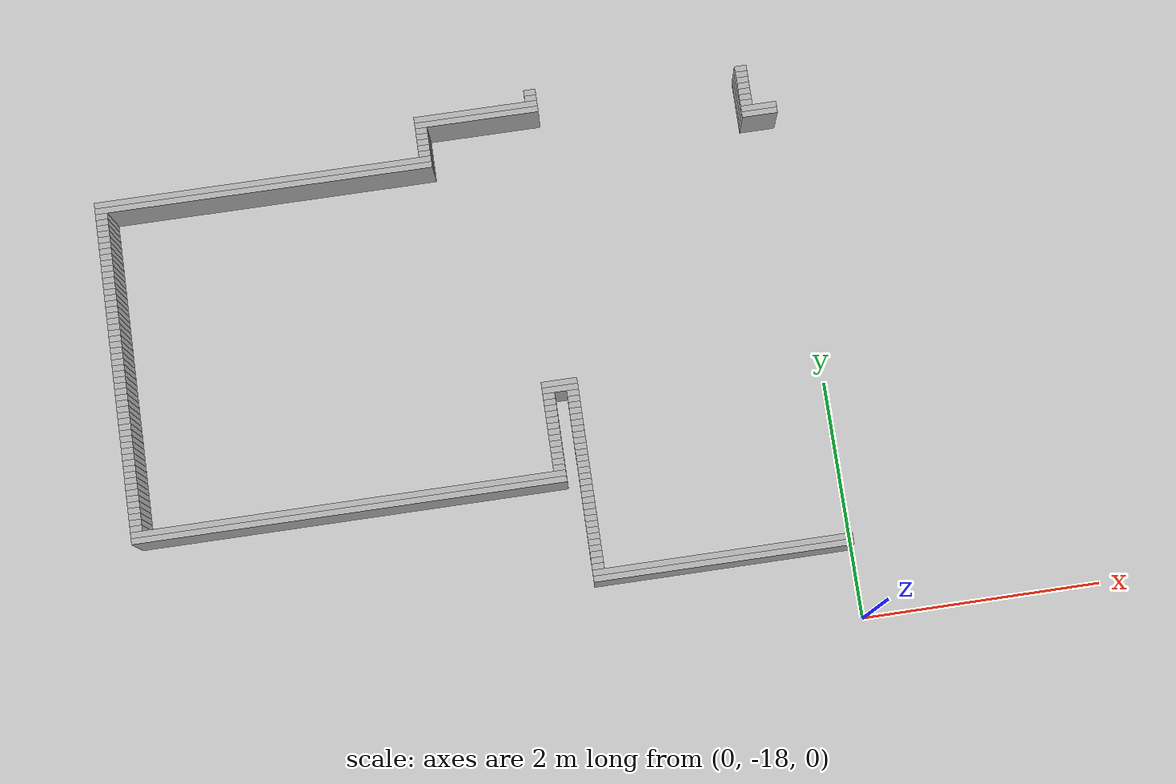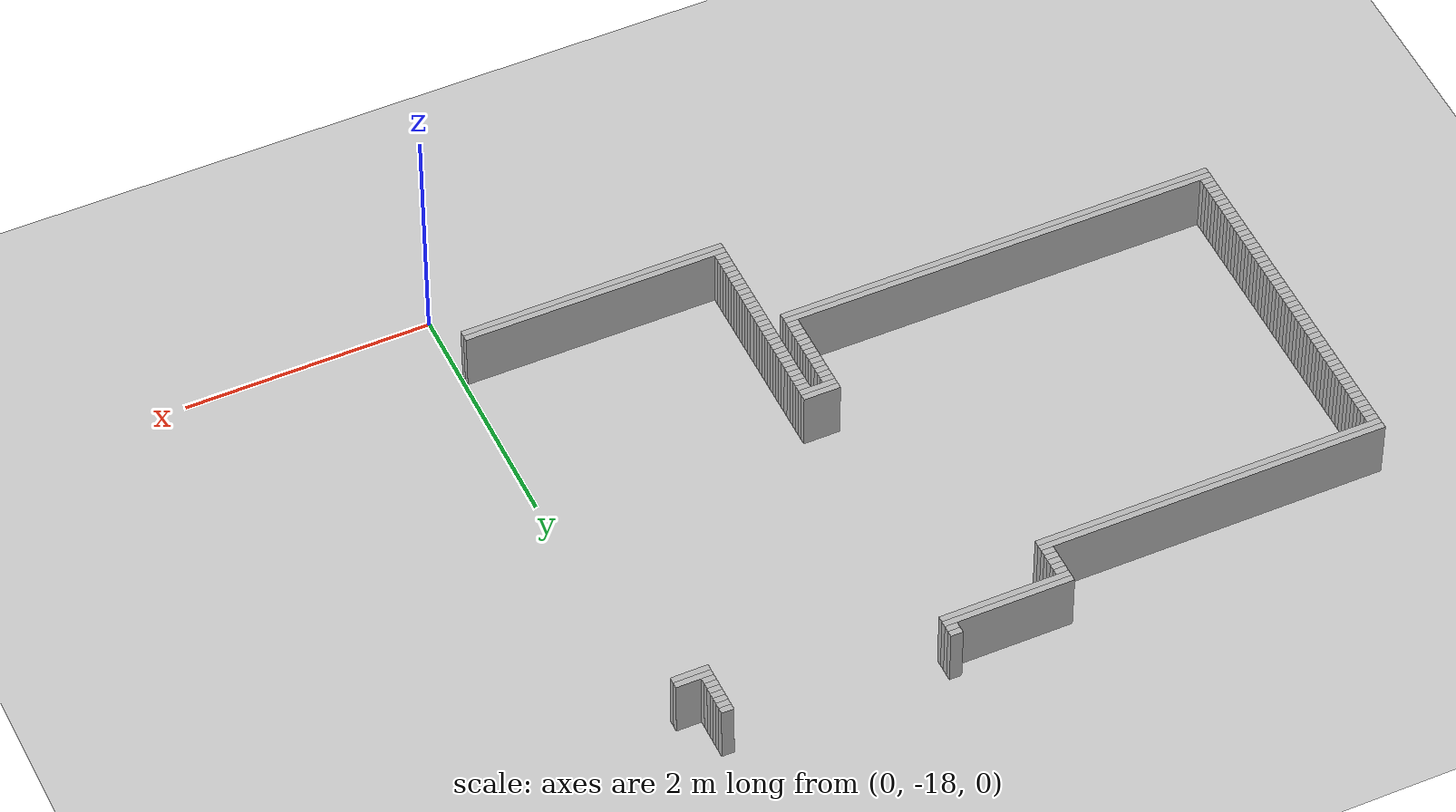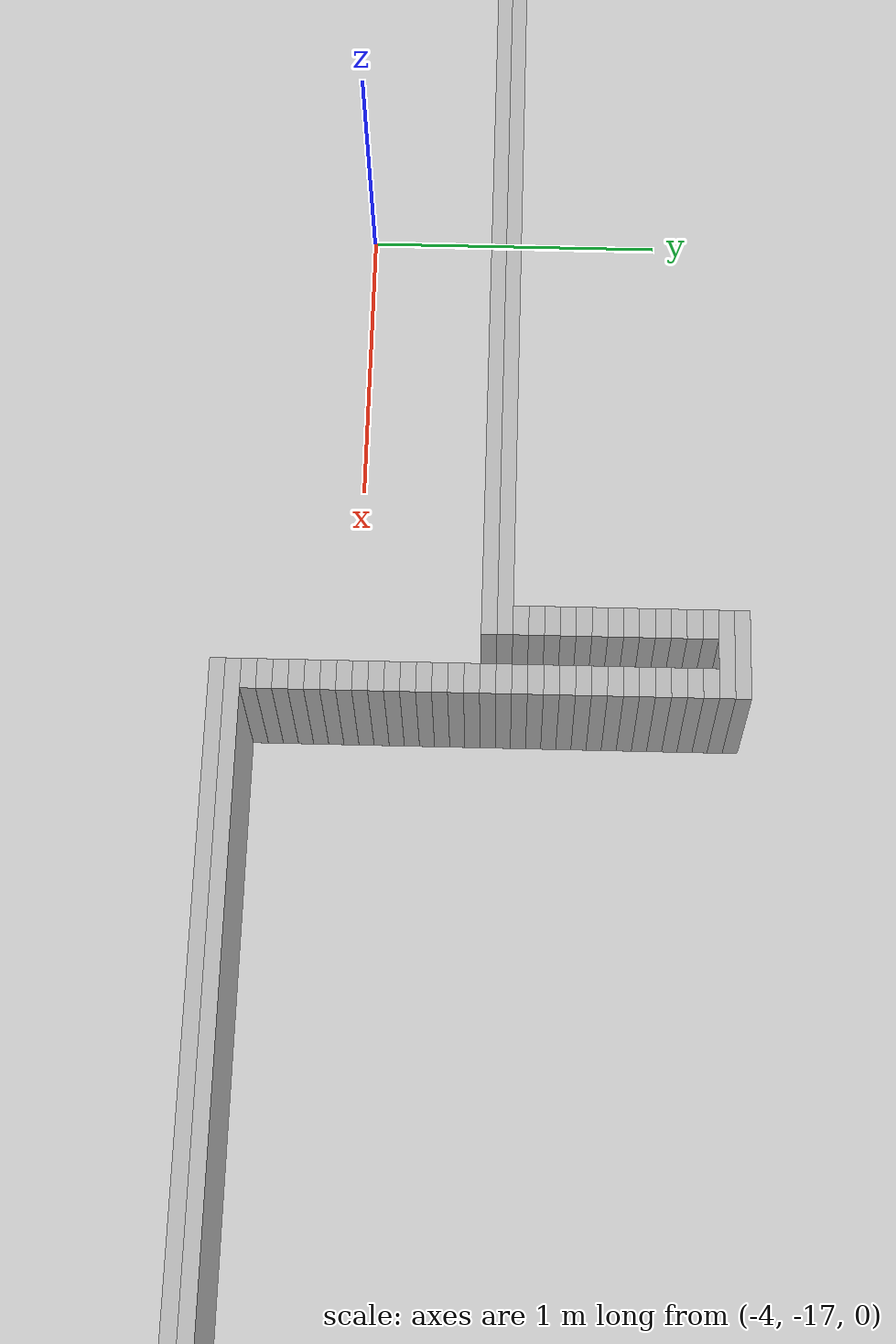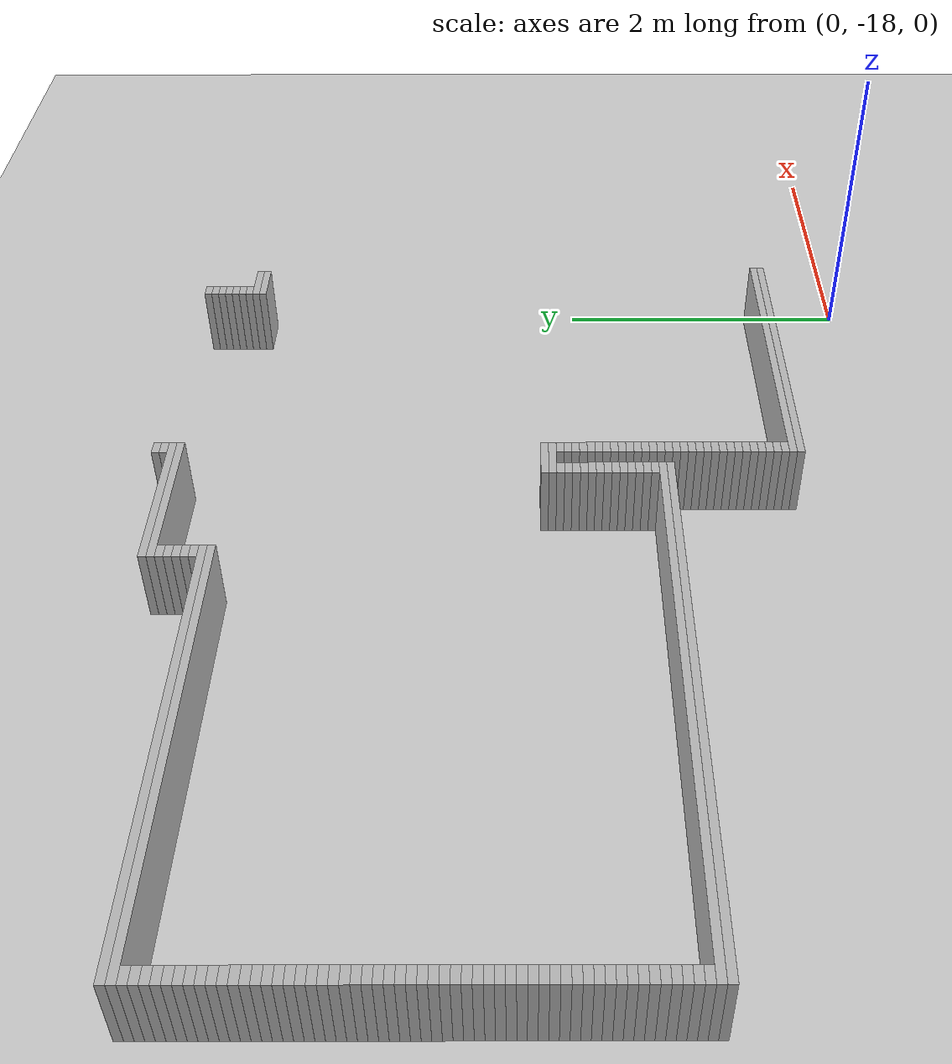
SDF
<sdf version="1.6">
 <world name="optimized_map_world">
  <include><uri>model://sun</uri></include>
  <include><uri>model://ground_plane</uri></include>
  <model name="obstacle_1091">
   <static>true</static>
   <link name="link">
    <collision name="collision"><geometry><box><size>0.1 0.05 0.5</size></box></geometry></collision>
    <visual name="visual"><geometry><box><size>0.1 0.05 0.5</size></box></geometry></visual>
   </link>
   <pose>-2.1249999999999982 -13.25 0.25 0 0 0</pose>
  </model>
  <model name="obstacle_1096">
   <static>true</static>
   <link name="link">
    <collision name="collision"><geometry><box><size>0.1 0.05 0.5</size></box></geometry></collision>
    <visual name="visual"><geometry><box><size>0.1 0.05 0.5</size></box></geometry></visual>
   </link>
   <pose>-2.1249999999999982 -13.3 0.25 0 0 0</pose>
  </model>
  <model name="obstacle_1097">
   <static>true</static>
   <link name="link">
    <collision name="collision"><geometry><box><size>0.1 0.05 0.5</size></box></geometry></collision>
    <visual name="visual"><geometry><box><size>0.1 0.05 0.5</size></box></geometry></visual>
   </link>
   <pose>-0.3249999999999993 -13.3 0.25 0 0 0</pose>
  </model>
  <model name="obstacle_1102">
   <static>true</static>
   <link name="link">
    <collision name="collision"><geometry><box><size>1.05 0.05 0.5</size></box></geometry></collision>
    <visual name="visual"><geometry><box><size>1.05 0.05 0.5</size></box></geometry></visual>
   </link>
   <pose>-2.599999999999998 -13.350000000000001 0.25 0 0 0</pose>
  </model>
  <model name="obstacle_1103">
   <static>true</static>
   <link name="link">
    <collision name="collision"><geometry><box><size>0.1 0.05 0.5</size></box></geometry></collision>
    <visual name="visual"><geometry><box><size>0.1 0.05 0.5</size></box></geometry></visual>
   </link>
   <pose>-0.3249999999999993 -13.350000000000001 0.25 0 0 0</pose>
  </model>
  <model name="obstacle_1108">
   <static>true</static>
   <link name="link">
    <collision name="collision"><geometry><box><size>1.05 0.05 0.5</size></box></geometry></collision>
    <visual name="visual"><geometry><box><size>1.05 0.05 0.5</size></box></geometry></visual>
   </link>
   <pose>-2.599999999999998 -13.4 0.25 0 0 0</pose>
  </model>
  <model name="obstacle_1109">
   <static>true</static>
   <link name="link">
    <collision name="collision"><geometry><box><size>0.1 0.05 0.5</size></box></geometry></collision>
    <visual name="visual"><geometry><box><size>0.1 0.05 0.5</size></box></geometry></visual>
   </link>
   <pose>-0.3249999999999993 -13.4 0.25 0 0 0</pose>
  </model>
  <model name="obstacle_1114">
   <static>true</static>
   <link name="link">
    <collision name="collision"><geometry><box><size>0.1 0.05 0.5</size></box></geometry></collision>
    <visual name="visual"><geometry><box><size>0.1 0.05 0.5</size></box></geometry></visual>
   </link>
   <pose>-3.0749999999999993 -13.45 0.25 0 0 0</pose>
  </model>
  <model name="obstacle_1115">
   <static>true</static>
   <link name="link">
    <collision name="collision"><geometry><box><size>0.1 0.05 0.5</size></box></geometry></collision>
    <visual name="visual"><geometry><box><size>0.1 0.05 0.5</size></box></geometry></visual>
   </link>
   <pose>-0.3249999999999993 -13.45 0.25 0 0 0</pose>
  </model>
  <model name="obstacle_1120">
   <static>true</static>
   <link name="link">
    <collision name="collision"><geometry><box><size>0.1 0.05 0.5</size></box></geometry></collision>
    <visual name="visual"><geometry><box><size>0.1 0.05 0.5</size></box></geometry></visual>
   </link>
   <pose>-3.0749999999999993 -13.5 0.25 0 0 0</pose>
  </model>
  <model name="obstacle_1121">
   <static>true</static>
   <link name="link">
    <collision name="collision"><geometry><box><size>0.1 0.05 0.5</size></box></geometry></collision>
    <visual name="visual"><geometry><box><size>0.1 0.05 0.5</size></box></geometry></visual>
   </link>
   <pose>-0.3249999999999993 -13.5 0.25 0 0 0</pose>
  </model>
  <model name="obstacle_1126">
   <static>true</static>
   <link name="link">
    <collision name="collision"><geometry><box><size>0.1 0.05 0.5</size></box></geometry></collision>
    <visual name="visual"><geometry><box><size>0.1 0.05 0.5</size></box></geometry></visual>
   </link>
   <pose>-3.0749999999999993 -13.55 0.25 0 0 0</pose>
  </model>
  <model name="obstacle_1127">
   <static>true</static>
   <link name="link">
    <collision name="collision"><geometry><box><size>0.1 0.05 0.5</size></box></geometry></collision>
    <visual name="visual"><geometry><box><size>0.1 0.05 0.5</size></box></geometry></visual>
   </link>
   <pose>-0.3249999999999993 -13.55 0.25 0 0 0</pose>
  </model>
  <model name="obstacle_1132">
   <static>true</static>
   <link name="link">
    <collision name="collision"><geometry><box><size>0.1 0.05 0.5</size></box></geometry></collision>
    <visual name="visual"><geometry><box><size>0.1 0.05 0.5</size></box></geometry></visual>
   </link>
   <pose>-3.0749999999999993 -13.600000000000001 0.25 0 0 0</pose>
  </model>
  <model name="obstacle_1133">
   <static>true</static>
   <link name="link">
    <collision name="collision"><geometry><box><size>0.1 0.05 0.5</size></box></geometry></collision>
    <visual name="visual"><geometry><box><size>0.1 0.05 0.5</size></box></geometry></visual>
   </link>
   <pose>-0.3249999999999993 -13.600000000000001 0.25 0 0 0</pose>
  </model>
  <model name="obstacle_1138">
   <static>true</static>
   <link name="link">
    <collision name="collision"><geometry><box><size>0.1 0.05 0.5</size></box></geometry></collision>
    <visual name="visual"><geometry><box><size>0.1 0.05 0.5</size></box></geometry></visual>
   </link>
   <pose>-3.0749999999999993 -13.65 0.25 0 0 0</pose>
  </model>
  <model name="obstacle_1139">
   <static>true</static>
   <link name="link">
    <collision name="collision">
     <geometry><box><size>0.30000000000000004 0.05 0.5</size></box></geometry>
    </collision>
    <visual name="visual"><geometry><box><size>0.30000000000000004 0.05 0.5</size></box></geometry></visual>
   </link>
   <pose>-0.22499999999999787 -13.65 0.25 0 0 0</pose>
  </model>
  <model name="obstacle_1143">
   <static>true</static>
   <link name="link">
    <collision name="collision"><geometry><box><size>2.85 0.05 0.5</size></box></geometry></collision>
    <visual name="visual"><geometry><box><size>2.85 0.05 0.5</size></box></geometry></visual>
   </link>
   <pose>-4.449999999999999 -13.7 0.25 0 0 0</pose>
  </model>
  <model name="obstacle_1144">
   <static>true</static>
   <link name="link">
    <collision name="collision">
     <geometry><box><size>0.30000000000000004 0.05 0.5</size></box></geometry>
    </collision>
    <visual name="visual"><geometry><box><size>0.30000000000000004 0.05 0.5</size></box></geometry></visual>
   </link>
   <pose>-0.22499999999999787 -13.7 0.25 0 0 0</pose>
  </model>
  <model name="obstacle_1148">
   <static>true</static>
   <link name="link">
    <collision name="collision"><geometry><box><size>2.85 0.05 0.5</size></box></geometry></collision>
    <visual name="visual"><geometry><box><size>2.85 0.05 0.5</size></box></geometry></visual>
   </link>
   <pose>-4.449999999999999 -13.75 0.25 0 0 0</pose>
  </model>
  <model name="obstacle_1152">
   <static>true</static>
   <link name="link">
    <collision name="collision"><geometry><box><size>0.1 0.05 0.5</size></box></geometry></collision>
    <visual name="visual"><geometry><box><size>0.1 0.05 0.5</size></box></geometry></visual>
   </link>
   <pose>-5.824999999999999 -13.8 0.25 0 0 0</pose>
  </model>
  <model name="obstacle_1156">
   <static>true</static>
   <link name="link">
    <collision name="collision"><geometry><box><size>0.1 0.05 0.5</size></box></geometry></collision>
    <visual name="visual"><geometry><box><size>0.1 0.05 0.5</size></box></geometry></visual>
   </link>
   <pose>-5.824999999999999 -13.850000000000001 0.25 0 0 0</pose>
  </model>
  <model name="obstacle_1160">
   <static>true</static>
   <link name="link">
    <collision name="collision"><geometry><box><size>0.1 0.05 0.5</size></box></geometry></collision>
    <visual name="visual"><geometry><box><size>0.1 0.05 0.5</size></box></geometry></visual>
   </link>
   <pose>-5.824999999999999 -13.9 0.25 0 0 0</pose>
  </model>
  <model name="obstacle_1164">
   <static>true</static>
   <link name="link">
    <collision name="collision"><geometry><box><size>0.1 0.05 0.5</size></box></geometry></collision>
    <visual name="visual"><geometry><box><size>0.1 0.05 0.5</size></box></geometry></visual>
   </link>
   <pose>-5.824999999999999 -13.95 0.25 0 0 0</pose>
  </model>
  <model name="obstacle_1168">
   <static>true</static>
   <link name="link">
    <collision name="collision"><geometry><box><size>0.1 0.05 0.5</size></box></geometry></collision>
    <visual name="visual"><geometry><box><size>0.1 0.05 0.5</size></box></geometry></visual>
   </link>
   <pose>-5.824999999999999 -14.0 0.25 0 0 0</pose>
  </model>
  <model name="obstacle_1172">
   <static>true</static>
   <link name="link">
    <collision name="collision"><geometry><box><size>0.1 0.05 0.5</size></box></geometry></collision>
    <visual name="visual"><geometry><box><size>0.1 0.05 0.5</size></box></geometry></visual>
   </link>
   <pose>-5.824999999999999 -14.05 0.25 0 0 0</pose>
  </model>
  <model name="obstacle_1175">
   <static>true</static>
   <link name="link">
    <collision name="collision"><geometry><box><size>0.1 0.05 0.5</size></box></geometry></collision>
    <visual name="visual"><geometry><box><size>0.1 0.05 0.5</size></box></geometry></visual>
   </link>
   <pose>-5.824999999999999 -14.100000000000001 0.25 0 0 0</pose>
  </model>
  <model name="obstacle_1178">
   <static>true</static>
   <link name="link">
    <collision name="collision"><geometry><box><size>0.1 0.05 0.5</size></box></geometry></collision>
    <visual name="visual"><geometry><box><size>0.1 0.05 0.5</size></box></geometry></visual>
   </link>
   <pose>-5.824999999999999 -14.15 0.25 0 0 0</pose>
  </model>
  <model name="obstacle_1180">
   <static>true</static>
   <link name="link">
    <collision name="collision"><geometry><box><size>0.1 0.05 0.5</size></box></geometry></collision>
    <visual name="visual"><geometry><box><size>0.1 0.05 0.5</size></box></geometry></visual>
   </link>
   <pose>-5.824999999999999 -14.2 0.25 0 0 0</pose>
  </model>
  <model name="obstacle_1182">
   <static>true</static>
   <link name="link">
    <collision name="collision"><geometry><box><size>0.1 0.05 0.5</size></box></geometry></collision>
    <visual name="visual"><geometry><box><size>0.1 0.05 0.5</size></box></geometry></visual>
   </link>
   <pose>-5.824999999999999 -14.25 0.25 0 0 0</pose>
  </model>
  <model name="obstacle_1184">
   <static>true</static>
   <link name="link">
    <collision name="collision"><geometry><box><size>0.1 0.05 0.5</size></box></geometry></collision>
    <visual name="visual"><geometry><box><size>0.1 0.05 0.5</size></box></geometry></visual>
   </link>
   <pose>-5.824999999999999 -14.3 0.25 0 0 0</pose>
  </model>
  <model name="obstacle_1186">
   <static>true</static>
   <link name="link">
    <collision name="collision"><geometry><box><size>0.1 0.05 0.5</size></box></geometry></collision>
    <visual name="visual"><geometry><box><size>0.1 0.05 0.5</size></box></geometry></visual>
   </link>
   <pose>-5.824999999999999 -14.350000000000001 0.25 0 0 0</pose>
  </model>
  <model name="obstacle_1188">
   <static>true</static>
   <link name="link">
    <collision name="collision"><geometry><box><size>0.1 0.05 0.5</size></box></geometry></collision>
    <visual name="visual"><geometry><box><size>0.1 0.05 0.5</size></box></geometry></visual>
   </link>
   <pose>-5.824999999999999 -14.4 0.25 0 0 0</pose>
  </model>
  <model name="obstacle_1190">
   <static>true</static>
   <link name="link">
    <collision name="collision"><geometry><box><size>0.1 0.05 0.5</size></box></geometry></collision>
    <visual name="visual"><geometry><box><size>0.1 0.05 0.5</size></box></geometry></visual>
   </link>
   <pose>-5.824999999999999 -14.45 0.25 0 0 0</pose>
  </model>
  <model name="obstacle_1192">
   <static>true</static>
   <link name="link">
    <collision name="collision"><geometry><box><size>0.1 0.05 0.5</size></box></geometry></collision>
    <visual name="visual"><geometry><box><size>0.1 0.05 0.5</size></box></geometry></visual>
   </link>
   <pose>-5.824999999999999 -14.5 0.25 0 0 0</pose>
  </model>
  <model name="obstacle_1194">
   <static>true</static>
   <link name="link">
    <collision name="collision"><geometry><box><size>0.1 0.05 0.5</size></box></geometry></collision>
    <visual name="visual"><geometry><box><size>0.1 0.05 0.5</size></box></geometry></visual>
   </link>
   <pose>-5.824999999999999 -14.55 0.25 0 0 0</pose>
  </model>
  <model name="obstacle_1196">
   <static>true</static>
   <link name="link">
    <collision name="collision"><geometry><box><size>0.1 0.05 0.5</size></box></geometry></collision>
    <visual name="visual"><geometry><box><size>0.1 0.05 0.5</size></box></geometry></visual>
   </link>
   <pose>-5.824999999999999 -14.600000000000001 0.25 0 0 0</pose>
  </model>
  <model name="obstacle_1198">
   <static>true</static>
   <link name="link">
    <collision name="collision"><geometry><box><size>0.1 0.05 0.5</size></box></geometry></collision>
    <visual name="visual"><geometry><box><size>0.1 0.05 0.5</size></box></geometry></visual>
   </link>
   <pose>-5.824999999999999 -14.65 0.25 0 0 0</pose>
  </model>
  <model name="obstacle_1200">
   <static>true</static>
   <link name="link">
    <collision name="collision"><geometry><box><size>0.1 0.05 0.5</size></box></geometry></collision>
    <visual name="visual"><geometry><box><size>0.1 0.05 0.5</size></box></geometry></visual>
   </link>
   <pose>-5.824999999999999 -14.7 0.25 0 0 0</pose>
  </model>
  <model name="obstacle_1202">
   <static>true</static>
   <link name="link">
    <collision name="collision"><geometry><box><size>0.1 0.05 0.5</size></box></geometry></collision>
    <visual name="visual"><geometry><box><size>0.1 0.05 0.5</size></box></geometry></visual>
   </link>
   <pose>-5.824999999999999 -14.75 0.25 0 0 0</pose>
  </model>
  <model name="obstacle_1204">
   <static>true</static>
   <link name="link">
    <collision name="collision"><geometry><box><size>0.1 0.05 0.5</size></box></geometry></collision>
    <visual name="visual"><geometry><box><size>0.1 0.05 0.5</size></box></geometry></visual>
   </link>
   <pose>-5.824999999999999 -14.8 0.25 0 0 0</pose>
  </model>
  <model name="obstacle_1206">
   <static>true</static>
   <link name="link">
    <collision name="collision"><geometry><box><size>0.1 0.05 0.5</size></box></geometry></collision>
    <visual name="visual"><geometry><box><size>0.1 0.05 0.5</size></box></geometry></visual>
   </link>
   <pose>-5.824999999999999 -14.850000000000001 0.25 0 0 0</pose>
  </model>
  <model name="obstacle_1208">
   <static>true</static>
   <link name="link">
    <collision name="collision"><geometry><box><size>0.1 0.05 0.5</size></box></geometry></collision>
    <visual name="visual"><geometry><box><size>0.1 0.05 0.5</size></box></geometry></visual>
   </link>
   <pose>-5.824999999999999 -14.9 0.25 0 0 0</pose>
  </model>
  <model name="obstacle_1210">
   <static>true</static>
   <link name="link">
    <collision name="collision"><geometry><box><size>0.1 0.05 0.5</size></box></geometry></collision>
    <visual name="visual"><geometry><box><size>0.1 0.05 0.5</size></box></geometry></visual>
   </link>
   <pose>-5.824999999999999 -14.95 0.25 0 0 0</pose>
  </model>
  <model name="obstacle_1212">
   <static>true</static>
   <link name="link">
    <collision name="collision"><geometry><box><size>0.1 0.05 0.5</size></box></geometry></collision>
    <visual name="visual"><geometry><box><size>0.1 0.05 0.5</size></box></geometry></visual>
   </link>
   <pose>-5.824999999999999 -15.0 0.25 0 0 0</pose>
  </model>
  <model name="obstacle_1214">
   <static>true</static>
   <link name="link">
    <collision name="collision"><geometry><box><size>0.1 0.05 0.5</size></box></geometry></collision>
    <visual name="visual"><geometry><box><size>0.1 0.05 0.5</size></box></geometry></visual>
   </link>
   <pose>-5.824999999999999 -15.05 0.25 0 0 0</pose>
  </model>
  <model name="obstacle_1216">
   <static>true</static>
   <link name="link">
    <collision name="collision"><geometry><box><size>0.1 0.05 0.5</size></box></geometry></collision>
    <visual name="visual"><geometry><box><size>0.1 0.05 0.5</size></box></geometry></visual>
   </link>
   <pose>-5.824999999999999 -15.100000000000001 0.25 0 0 0</pose>
  </model>
  <model name="obstacle_1218">
   <static>true</static>
   <link name="link">
    <collision name="collision"><geometry><box><size>0.1 0.05 0.5</size></box></geometry></collision>
    <visual name="visual"><geometry><box><size>0.1 0.05 0.5</size></box></geometry></visual>
   </link>
   <pose>-5.824999999999999 -15.15 0.25 0 0 0</pose>
  </model>
  <model name="obstacle_1220">
   <static>true</static>
   <link name="link">
    <collision name="collision"><geometry><box><size>0.1 0.05 0.5</size></box></geometry></collision>
    <visual name="visual"><geometry><box><size>0.1 0.05 0.5</size></box></geometry></visual>
   </link>
   <pose>-5.824999999999999 -15.2 0.25 0 0 0</pose>
  </model>
  <model name="obstacle_1222">
   <static>true</static>
   <link name="link">
    <collision name="collision"><geometry><box><size>0.1 0.05 0.5</size></box></geometry></collision>
    <visual name="visual"><geometry><box><size>0.1 0.05 0.5</size></box></geometry></visual>
   </link>
   <pose>-5.824999999999999 -15.25 0.25 0 0 0</pose>
  </model>
  <model name="obstacle_1224">
   <static>true</static>
   <link name="link">
    <collision name="collision"><geometry><box><size>0.1 0.05 0.5</size></box></geometry></collision>
    <visual name="visual"><geometry><box><size>0.1 0.05 0.5</size></box></geometry></visual>
   </link>
   <pose>-5.824999999999999 -15.3 0.25 0 0 0</pose>
  </model>
  <model name="obstacle_1226">
   <static>true</static>
   <link name="link">
    <collision name="collision"><geometry><box><size>0.1 0.05 0.5</size></box></geometry></collision>
    <visual name="visual"><geometry><box><size>0.1 0.05 0.5</size></box></geometry></visual>
   </link>
   <pose>-5.824999999999999 -15.350000000000001 0.25 0 0 0</pose>
  </model>
  <model name="obstacle_1228">
   <static>true</static>
   <link name="link">
    <collision name="collision"><geometry><box><size>0.1 0.05 0.5</size></box></geometry></collision>
    <visual name="visual"><geometry><box><size>0.1 0.05 0.5</size></box></geometry></visual>
   </link>
   <pose>-5.824999999999999 -15.4 0.25 0 0 0</pose>
  </model>
  <model name="obstacle_1230">
   <static>true</static>
   <link name="link">
    <collision name="collision"><geometry><box><size>0.1 0.05 0.5</size></box></geometry></collision>
    <visual name="visual"><geometry><box><size>0.1 0.05 0.5</size></box></geometry></visual>
   </link>
   <pose>-5.824999999999999 -15.45 0.25 0 0 0</pose>
  </model>
  <model name="obstacle_1233">
   <static>true</static>
   <link name="link">
    <collision name="collision"><geometry><box><size>0.1 0.05 0.5</size></box></geometry></collision>
    <visual name="visual"><geometry><box><size>0.1 0.05 0.5</size></box></geometry></visual>
   </link>
   <pose>-5.824999999999999 -15.5 0.25 0 0 0</pose>
  </model>
  <model name="obstacle_1236">
   <static>true</static>
   <link name="link">
    <collision name="collision"><geometry><box><size>0.1 0.05 0.5</size></box></geometry></collision>
    <visual name="visual"><geometry><box><size>0.1 0.05 0.5</size></box></geometry></visual>
   </link>
   <pose>-5.824999999999999 -15.55 0.25 0 0 0</pose>
  </model>
  <model name="obstacle_1241">
   <static>true</static>
   <link name="link">
    <collision name="collision"><geometry><box><size>0.1 0.05 0.5</size></box></geometry></collision>
    <visual name="visual"><geometry><box><size>0.1 0.05 0.5</size></box></geometry></visual>
   </link>
   <pose>-5.824999999999999 -15.600000000000001 0.25 0 0 0</pose>
  </model>
  <model name="obstacle_1246">
   <static>true</static>
   <link name="link">
    <collision name="collision"><geometry><box><size>0.1 0.05 0.5</size></box></geometry></collision>
    <visual name="visual"><geometry><box><size>0.1 0.05 0.5</size></box></geometry></visual>
   </link>
   <pose>-5.824999999999999 -15.65 0.25 0 0 0</pose>
  </model>
  <model name="obstacle_1252">
   <static>true</static>
   <link name="link">
    <collision name="collision"><geometry><box><size>0.1 0.05 0.5</size></box></geometry></collision>
    <visual name="visual"><geometry><box><size>0.1 0.05 0.5</size></box></geometry></visual>
   </link>
   <pose>-5.824999999999999 -15.7 0.25 0 0 0</pose>
  </model>
  <model name="obstacle_1257">
   <static>true</static>
   <link name="link">
    <collision name="collision"><geometry><box><size>0.1 0.05 0.5</size></box></geometry></collision>
    <visual name="visual"><geometry><box><size>0.1 0.05 0.5</size></box></geometry></visual>
   </link>
   <pose>-5.824999999999999 -15.75 0.25 0 0 0</pose>
  </model>
  <model name="obstacle_1258">
   <static>true</static>
   <link name="link">
    <collision name="collision">
     <geometry><box><size>0.30000000000000004 0.05 0.5</size></box></geometry>
    </collision>
    <visual name="visual"><geometry><box><size>0.30000000000000004 0.05 0.5</size></box></geometry></visual>
   </link>
   <pose>-2.224999999999998 -15.75 0.25 0 0 0</pose>
  </model>
  <model name="obstacle_1263">
   <static>true</static>
   <link name="link">
    <collision name="collision"><geometry><box><size>0.1 0.05 0.5</size></box></geometry></collision>
    <visual name="visual"><geometry><box><size>0.1 0.05 0.5</size></box></geometry></visual>
   </link>
   <pose>-5.824999999999999 -15.8 0.25 0 0 0</pose>
  </model>
  <model name="obstacle_1264">
   <static>true</static>
   <link name="link">
    <collision name="collision">
     <geometry><box><size>0.30000000000000004 0.05 0.5</size></box></geometry>
    </collision>
    <visual name="visual"><geometry><box><size>0.30000000000000004 0.05 0.5</size></box></geometry></visual>
   </link>
   <pose>-2.224999999999998 -15.8 0.25 0 0 0</pose>
  </model>
  <model name="obstacle_1268">
   <static>true</static>
   <link name="link">
    <collision name="collision"><geometry><box><size>0.1 0.05 0.5</size></box></geometry></collision>
    <visual name="visual"><geometry><box><size>0.1 0.05 0.5</size></box></geometry></visual>
   </link>
   <pose>-5.824999999999999 -15.850000000000001 0.25 0 0 0</pose>
  </model>
  <model name="obstacle_1269">
   <static>true</static>
   <link name="link">
    <collision name="collision"><geometry><box><size>0.1 0.05 0.5</size></box></geometry></collision>
    <visual name="visual"><geometry><box><size>0.1 0.05 0.5</size></box></geometry></visual>
   </link>
   <pose>-2.3249999999999993 -15.850000000000001 0.25 0 0 0</pose>
  </model>
  <model name="obstacle_1270">
   <static>true</static>
   <link name="link">
    <collision name="collision"><geometry><box><size>0.1 0.05 0.5</size></box></geometry></collision>
    <visual name="visual"><geometry><box><size>0.1 0.05 0.5</size></box></geometry></visual>
   </link>
   <pose>-2.1249999999999982 -15.850000000000001 0.25 0 0 0</pose>
  </model>
  <model name="obstacle_1274">
   <static>true</static>
   <link name="link">
    <collision name="collision"><geometry><box><size>0.1 0.05 0.5</size></box></geometry></collision>
    <visual name="visual"><geometry><box><size>0.1 0.05 0.5</size></box></geometry></visual>
   </link>
   <pose>-5.824999999999999 -15.9 0.25 0 0 0</pose>
  </model>
  <model name="obstacle_1275">
   <static>true</static>
   <link name="link">
    <collision name="collision"><geometry><box><size>0.1 0.05 0.5</size></box></geometry></collision>
    <visual name="visual"><geometry><box><size>0.1 0.05 0.5</size></box></geometry></visual>
   </link>
   <pose>-2.3249999999999993 -15.9 0.25 0 0 0</pose>
  </model>
  <model name="obstacle_1276">
   <static>true</static>
   <link name="link">
    <collision name="collision"><geometry><box><size>0.1 0.05 0.5</size></box></geometry></collision>
    <visual name="visual"><geometry><box><size>0.1 0.05 0.5</size></box></geometry></visual>
   </link>
   <pose>-2.1249999999999982 -15.9 0.25 0 0 0</pose>
  </model>
  <model name="obstacle_1279">
   <static>true</static>
   <link name="link">
    <collision name="collision"><geometry><box><size>0.1 0.05 0.5</size></box></geometry></collision>
    <visual name="visual"><geometry><box><size>0.1 0.05 0.5</size></box></geometry></visual>
   </link>
   <pose>-5.824999999999999 -15.95 0.25 0 0 0</pose>
  </model>
  <model name="obstacle_1280">
   <static>true</static>
   <link name="link">
    <collision name="collision"><geometry><box><size>0.1 0.05 0.5</size></box></geometry></collision>
    <visual name="visual"><geometry><box><size>0.1 0.05 0.5</size></box></geometry></visual>
   </link>
   <pose>-2.3249999999999993 -15.95 0.25 0 0 0</pose>
  </model>
  <model name="obstacle_1281">
   <static>true</static>
   <link name="link">
    <collision name="collision"><geometry><box><size>0.1 0.05 0.5</size></box></geometry></collision>
    <visual name="visual"><geometry><box><size>0.1 0.05 0.5</size></box></geometry></visual>
   </link>
   <pose>-2.1249999999999982 -15.95 0.25 0 0 0</pose>
  </model>
  <model name="obstacle_1284">
   <static>true</static>
   <link name="link">
    <collision name="collision"><geometry><box><size>0.1 0.05 0.5</size></box></geometry></collision>
    <visual name="visual"><geometry><box><size>0.1 0.05 0.5</size></box></geometry></visual>
   </link>
   <pose>-5.824999999999999 -16.0 0.25 0 0 0</pose>
  </model>
  <model name="obstacle_1285">
   <static>true</static>
   <link name="link">
    <collision name="collision"><geometry><box><size>0.1 0.05 0.5</size></box></geometry></collision>
    <visual name="visual"><geometry><box><size>0.1 0.05 0.5</size></box></geometry></visual>
   </link>
   <pose>-2.3249999999999993 -16.0 0.25 0 0 0</pose>
  </model>
  <model name="obstacle_1286">
   <static>true</static>
   <link name="link">
    <collision name="collision"><geometry><box><size>0.1 0.05 0.5</size></box></geometry></collision>
    <visual name="visual"><geometry><box><size>0.1 0.05 0.5</size></box></geometry></visual>
   </link>
   <pose>-2.1249999999999982 -16.0 0.25 0 0 0</pose>
  </model>
  <model name="obstacle_1288">
   <static>true</static>
   <link name="link">
    <collision name="collision"><geometry><box><size>0.1 0.05 0.5</size></box></geometry></collision>
    <visual name="visual"><geometry><box><size>0.1 0.05 0.5</size></box></geometry></visual>
   </link>
   <pose>-5.824999999999999 -16.05 0.25 0 0 0</pose>
  </model>
  <model name="obstacle_1289">
   <static>true</static>
   <link name="link">
    <collision name="collision"><geometry><box><size>0.1 0.05 0.5</size></box></geometry></collision>
    <visual name="visual"><geometry><box><size>0.1 0.05 0.5</size></box></geometry></visual>
   </link>
   <pose>-2.3249999999999993 -16.05 0.25 0 0 0</pose>
  </model>
  <model name="obstacle_1290">
   <static>true</static>
   <link name="link">
    <collision name="collision"><geometry><box><size>0.1 0.05 0.5</size></box></geometry></collision>
    <visual name="visual"><geometry><box><size>0.1 0.05 0.5</size></box></geometry></visual>
   </link>
   <pose>-2.1249999999999982 -16.05 0.25 0 0 0</pose>
  </model>
  <model name="obstacle_1292">
   <static>true</static>
   <link name="link">
    <collision name="collision"><geometry><box><size>0.1 0.05 0.5</size></box></geometry></collision>
    <visual name="visual"><geometry><box><size>0.1 0.05 0.5</size></box></geometry></visual>
   </link>
   <pose>-5.824999999999999 -16.1 0.25 0 0 0</pose>
  </model>
  <model name="obstacle_1293">
   <static>true</static>
   <link name="link">
    <collision name="collision"><geometry><box><size>0.1 0.05 0.5</size></box></geometry></collision>
    <visual name="visual"><geometry><box><size>0.1 0.05 0.5</size></box></geometry></visual>
   </link>
   <pose>-2.3249999999999993 -16.1 0.25 0 0 0</pose>
  </model>
  <model name="obstacle_1294">
   <static>true</static>
   <link name="link">
    <collision name="collision"><geometry><box><size>0.1 0.05 0.5</size></box></geometry></collision>
    <visual name="visual"><geometry><box><size>0.1 0.05 0.5</size></box></geometry></visual>
   </link>
   <pose>-2.1249999999999982 -16.1 0.25 0 0 0</pose>
  </model>
  <model name="obstacle_1296">
   <static>true</static>
   <link name="link">
    <collision name="collision"><geometry><box><size>0.1 0.05 0.5</size></box></geometry></collision>
    <visual name="visual"><geometry><box><size>0.1 0.05 0.5</size></box></geometry></visual>
   </link>
   <pose>-5.824999999999999 -16.15 0.25 0 0 0</pose>
  </model>
  <model name="obstacle_1297">
   <static>true</static>
   <link name="link">
    <collision name="collision"><geometry><box><size>0.1 0.05 0.5</size></box></geometry></collision>
    <visual name="visual"><geometry><box><size>0.1 0.05 0.5</size></box></geometry></visual>
   </link>
   <pose>-2.3249999999999993 -16.15 0.25 0 0 0</pose>
  </model>
  <model name="obstacle_1298">
   <static>true</static>
   <link name="link">
    <collision name="collision"><geometry><box><size>0.1 0.05 0.5</size></box></geometry></collision>
    <visual name="visual"><geometry><box><size>0.1 0.05 0.5</size></box></geometry></visual>
   </link>
   <pose>-2.1249999999999982 -16.15 0.25 0 0 0</pose>
  </model>
  <model name="obstacle_1300">
   <static>true</static>
   <link name="link">
    <collision name="collision"><geometry><box><size>0.1 0.05 0.5</size></box></geometry></collision>
    <visual name="visual"><geometry><box><size>0.1 0.05 0.5</size></box></geometry></visual>
   </link>
   <pose>-5.824999999999999 -16.2 0.25 0 0 0</pose>
  </model>
  <model name="obstacle_1301">
   <static>true</static>
   <link name="link">
    <collision name="collision"><geometry><box><size>0.1 0.05 0.5</size></box></geometry></collision>
    <visual name="visual"><geometry><box><size>0.1 0.05 0.5</size></box></geometry></visual>
   </link>
   <pose>-2.3249999999999993 -16.2 0.25 0 0 0</pose>
  </model>
  <model name="obstacle_1302">
   <static>true</static>
   <link name="link">
    <collision name="collision"><geometry><box><size>0.1 0.05 0.5</size></box></geometry></collision>
    <visual name="visual"><geometry><box><size>0.1 0.05 0.5</size></box></geometry></visual>
   </link>
   <pose>-2.1249999999999982 -16.2 0.25 0 0 0</pose>
  </model>
  <model name="obstacle_1304">
   <static>true</static>
   <link name="link">
    <collision name="collision"><geometry><box><size>0.1 0.05 0.5</size></box></geometry></collision>
    <visual name="visual"><geometry><box><size>0.1 0.05 0.5</size></box></geometry></visual>
   </link>
   <pose>-5.824999999999999 -16.25 0.25 0 0 0</pose>
  </model>
  <model name="obstacle_1305">
   <static>true</static>
   <link name="link">
    <collision name="collision"><geometry><box><size>0.1 0.05 0.5</size></box></geometry></collision>
    <visual name="visual"><geometry><box><size>0.1 0.05 0.5</size></box></geometry></visual>
   </link>
   <pose>-2.3249999999999993 -16.25 0.25 0 0 0</pose>
  </model>
  <model name="obstacle_1306">
   <static>true</static>
   <link name="link">
    <collision name="collision"><geometry><box><size>0.1 0.05 0.5</size></box></geometry></collision>
    <visual name="visual"><geometry><box><size>0.1 0.05 0.5</size></box></geometry></visual>
   </link>
   <pose>-2.1249999999999982 -16.25 0.25 0 0 0</pose>
  </model>
  <model name="obstacle_1308">
   <static>true</static>
   <link name="link">
    <collision name="collision"><geometry><box><size>0.1 0.05 0.5</size></box></geometry></collision>
    <visual name="visual"><geometry><box><size>0.1 0.05 0.5</size></box></geometry></visual>
   </link>
   <pose>-5.824999999999999 -16.3 0.25 0 0 0</pose>
  </model>
  <model name="obstacle_1309">
   <static>true</static>
   <link name="link">
    <collision name="collision"><geometry><box><size>0.1 0.05 0.5</size></box></geometry></collision>
    <visual name="visual"><geometry><box><size>0.1 0.05 0.5</size></box></geometry></visual>
   </link>
   <pose>-2.3249999999999993 -16.3 0.25 0 0 0</pose>
  </model>
  <model name="obstacle_1310">
   <static>true</static>
   <link name="link">
    <collision name="collision"><geometry><box><size>0.1 0.05 0.5</size></box></geometry></collision>
    <visual name="visual"><geometry><box><size>0.1 0.05 0.5</size></box></geometry></visual>
   </link>
   <pose>-2.1249999999999982 -16.3 0.25 0 0 0</pose>
  </model>
  <model name="obstacle_1312">
   <static>true</static>
   <link name="link">
    <collision name="collision"><geometry><box><size>0.1 0.05 0.5</size></box></geometry></collision>
    <visual name="visual"><geometry><box><size>0.1 0.05 0.5</size></box></geometry></visual>
   </link>
   <pose>-5.824999999999999 -16.35 0.25 0 0 0</pose>
  </model>
  <model name="obstacle_1313">
   <static>true</static>
   <link name="link">
    <collision name="collision"><geometry><box><size>0.1 0.05 0.5</size></box></geometry></collision>
    <visual name="visual"><geometry><box><size>0.1 0.05 0.5</size></box></geometry></visual>
   </link>
   <pose>-2.3249999999999993 -16.35 0.25 0 0 0</pose>
  </model>
  <model name="obstacle_1314">
   <static>true</static>
   <link name="link">
    <collision name="collision"><geometry><box><size>0.1 0.05 0.5</size></box></geometry></collision>
    <visual name="visual"><geometry><box><size>0.1 0.05 0.5</size></box></geometry></visual>
   </link>
   <pose>-2.1249999999999982 -16.35 0.25 0 0 0</pose>
  </model>
  <model name="obstacle_1316">
   <static>true</static>
   <link name="link">
    <collision name="collision"><geometry><box><size>0.1 0.05 0.5</size></box></geometry></collision>
    <visual name="visual"><geometry><box><size>0.1 0.05 0.5</size></box></geometry></visual>
   </link>
   <pose>-5.824999999999999 -16.4 0.25 0 0 0</pose>
  </model>
  <model name="obstacle_1317">
   <static>true</static>
   <link name="link">
    <collision name="collision"><geometry><box><size>0.1 0.05 0.5</size></box></geometry></collision>
    <visual name="visual"><geometry><box><size>0.1 0.05 0.5</size></box></geometry></visual>
   </link>
   <pose>-2.3249999999999993 -16.4 0.25 0 0 0</pose>
  </model>
  <model name="obstacle_1318">
   <static>true</static>
   <link name="link">
    <collision name="collision"><geometry><box><size>0.1 0.05 0.5</size></box></geometry></collision>
    <visual name="visual"><geometry><box><size>0.1 0.05 0.5</size></box></geometry></visual>
   </link>
   <pose>-2.1249999999999982 -16.4 0.25 0 0 0</pose>
  </model>
  <model name="obstacle_1320">
   <static>true</static>
   <link name="link">
    <collision name="collision"><geometry><box><size>0.1 0.05 0.5</size></box></geometry></collision>
    <visual name="visual"><geometry><box><size>0.1 0.05 0.5</size></box></geometry></visual>
   </link>
   <pose>-5.824999999999999 -16.45 0.25 0 0 0</pose>
  </model>
  <model name="obstacle_1321">
   <static>true</static>
   <link name="link">
    <collision name="collision"><geometry><box><size>0.1 0.05 0.5</size></box></geometry></collision>
    <visual name="visual"><geometry><box><size>0.1 0.05 0.5</size></box></geometry></visual>
   </link>
   <pose>-2.3249999999999993 -16.45 0.25 0 0 0</pose>
  </model>
  <model name="obstacle_1322">
   <static>true</static>
   <link name="link">
    <collision name="collision"><geometry><box><size>0.1 0.05 0.5</size></box></geometry></collision>
    <visual name="visual"><geometry><box><size>0.1 0.05 0.5</size></box></geometry></visual>
   </link>
   <pose>-2.1249999999999982 -16.45 0.25 0 0 0</pose>
  </model>
  <model name="obstacle_1324">
   <static>true</static>
   <link name="link">
    <collision name="collision"><geometry><box><size>3.6 0.05 0.5</size></box></geometry></collision>
    <visual name="visual"><geometry><box><size>3.6 0.05 0.5</size></box></geometry></visual>
   </link>
   <pose>-4.074999999999999 -16.5 0.25 0 0 0</pose>
  </model>
  <model name="obstacle_1325">
   <static>true</static>
   <link name="link">
    <collision name="collision"><geometry><box><size>0.1 0.05 0.5</size></box></geometry></collision>
    <visual name="visual"><geometry><box><size>0.1 0.05 0.5</size></box></geometry></visual>
   </link>
   <pose>-2.1249999999999982 -16.5 0.25 0 0 0</pose>
  </model>
  <model name="obstacle_1327">
   <static>true</static>
   <link name="link">
    <collision name="collision"><geometry><box><size>3.6 0.05 0.5</size></box></geometry></collision>
    <visual name="visual"><geometry><box><size>3.6 0.05 0.5</size></box></geometry></visual>
   </link>
   <pose>-4.074999999999999 -16.55 0.25 0 0 0</pose>
  </model>
  <model name="obstacle_1328">
   <static>true</static>
   <link name="link">
    <collision name="collision"><geometry><box><size>0.1 0.05 0.5</size></box></geometry></collision>
    <visual name="visual"><geometry><box><size>0.1 0.05 0.5</size></box></geometry></visual>
   </link>
   <pose>-2.1249999999999982 -16.55 0.25 0 0 0</pose>
  </model>
  <model name="obstacle_1330">
   <static>true</static>
   <link name="link">
    <collision name="collision"><geometry><box><size>0.1 0.05 0.5</size></box></geometry></collision>
    <visual name="visual"><geometry><box><size>0.1 0.05 0.5</size></box></geometry></visual>
   </link>
   <pose>-2.1249999999999982 -16.6 0.25 0 0 0</pose>
  </model>
  <model name="obstacle_1332">
   <static>true</static>
   <link name="link">
    <collision name="collision"><geometry><box><size>0.1 0.05 0.5</size></box></geometry></collision>
    <visual name="visual"><geometry><box><size>0.1 0.05 0.5</size></box></geometry></visual>
   </link>
   <pose>-2.1249999999999982 -16.65 0.25 0 0 0</pose>
  </model>
  <model name="obstacle_1334">
   <static>true</static>
   <link name="link">
    <collision name="collision"><geometry><box><size>0.1 0.05 0.5</size></box></geometry></collision>
    <visual name="visual"><geometry><box><size>0.1 0.05 0.5</size></box></geometry></visual>
   </link>
   <pose>-2.1249999999999982 -16.7 0.25 0 0 0</pose>
  </model>
  <model name="obstacle_1336">
   <static>true</static>
   <link name="link">
    <collision name="collision"><geometry><box><size>0.1 0.05 0.5</size></box></geometry></collision>
    <visual name="visual"><geometry><box><size>0.1 0.05 0.5</size></box></geometry></visual>
   </link>
   <pose>-2.1249999999999982 -16.75 0.25 0 0 0</pose>
  </model>
  <model name="obstacle_1338">
   <static>true</static>
   <link name="link">
    <collision name="collision"><geometry><box><size>0.1 0.05 0.5</size></box></geometry></collision>
    <visual name="visual"><geometry><box><size>0.1 0.05 0.5</size></box></geometry></visual>
   </link>
   <pose>-2.1249999999999982 -16.8 0.25 0 0 0</pose>
  </model>
  <model name="obstacle_1340">
   <static>true</static>
   <link name="link">
    <collision name="collision"><geometry><box><size>0.1 0.05 0.5</size></box></geometry></collision>
    <visual name="visual"><geometry><box><size>0.1 0.05 0.5</size></box></geometry></visual>
   </link>
   <pose>-2.1249999999999982 -16.85 0.25 0 0 0</pose>
  </model>
  <model name="obstacle_1342">
   <static>true</static>
   <link name="link">
    <collision name="collision"><geometry><box><size>0.1 0.05 0.5</size></box></geometry></collision>
    <visual name="visual"><geometry><box><size>0.1 0.05 0.5</size></box></geometry></visual>
   </link>
   <pose>-2.1249999999999982 -16.9 0.25 0 0 0</pose>
  </model>
  <model name="obstacle_1344">
   <static>true</static>
   <link name="link">
    <collision name="collision"><geometry><box><size>0.1 0.05 0.5</size></box></geometry></collision>
    <visual name="visual"><geometry><box><size>0.1 0.05 0.5</size></box></geometry></visual>
   </link>
   <pose>-2.1249999999999982 -16.95 0.25 0 0 0</pose>
  </model>
  <model name="obstacle_1346">
   <static>true</static>
   <link name="link">
    <collision name="collision"><geometry><box><size>0.1 0.05 0.5</size></box></geometry></collision>
    <visual name="visual"><geometry><box><size>0.1 0.05 0.5</size></box></geometry></visual>
   </link>
   <pose>-2.1249999999999982 -17.0 0.25 0 0 0</pose>
  </model>
  <model name="obstacle_1348">
   <static>true</static>
   <link name="link">
    <collision name="collision"><geometry><box><size>0.1 0.05 0.5</size></box></geometry></collision>
    <visual name="visual"><geometry><box><size>0.1 0.05 0.5</size></box></geometry></visual>
   </link>
   <pose>-2.1249999999999982 -17.05 0.25 0 0 0</pose>
  </model>
  <model name="obstacle_1350">
   <static>true</static>
   <link name="link">
    <collision name="collision"><geometry><box><size>0.1 0.05 0.5</size></box></geometry></collision>
    <visual name="visual"><geometry><box><size>0.1 0.05 0.5</size></box></geometry></visual>
   </link>
   <pose>-2.1249999999999982 -17.1 0.25 0 0 0</pose>
  </model>
  <model name="obstacle_1352">
   <static>true</static>
   <link name="link">
    <collision name="collision"><geometry><box><size>0.1 0.05 0.5</size></box></geometry></collision>
    <visual name="visual"><geometry><box><size>0.1 0.05 0.5</size></box></geometry></visual>
   </link>
   <pose>-2.1249999999999982 -17.15 0.25 0 0 0</pose>
  </model>
  <model name="obstacle_1354">
   <static>true</static>
   <link name="link">
    <collision name="collision"><geometry><box><size>0.1 0.05 0.5</size></box></geometry></collision>
    <visual name="visual"><geometry><box><size>0.1 0.05 0.5</size></box></geometry></visual>
   </link>
   <pose>-2.1249999999999982 -17.2 0.25 0 0 0</pose>
  </model>
  <model name="obstacle_1356">
   <static>true</static>
   <link name="link">
    <collision name="collision"><geometry><box><size>0.1 0.05 0.5</size></box></geometry></collision>
    <visual name="visual"><geometry><box><size>0.1 0.05 0.5</size></box></geometry></visual>
   </link>
   <pose>-2.1249999999999982 -17.25 0.25 0 0 0</pose>
  </model>
  <model name="obstacle_1358">
   <static>true</static>
   <link name="link">
    <collision name="collision"><geometry><box><size>0.1 0.05 0.5</size></box></geometry></collision>
    <visual name="visual"><geometry><box><size>0.1 0.05 0.5</size></box></geometry></visual>
   </link>
   <pose>-2.1249999999999982 -17.3 0.25 0 0 0</pose>
  </model>
  <model name="obstacle_1360">
   <static>true</static>
   <link name="link">
    <collision name="collision"><geometry><box><size>2.15 0.05 0.5</size></box></geometry></collision>
    <visual name="visual"><geometry><box><size>2.15 0.05 0.5</size></box></geometry></visual>
   </link>
   <pose>-1.0999999999999979 -17.35 0.25 0 0 0</pose>
  </model>
  <model name="obstacle_1361">
   <static>true</static>
   <link name="link">
    <collision name="collision"><geometry><box><size>2.15 0.05 0.5</size></box></geometry></collision>
    <visual name="visual"><geometry><box><size>2.15 0.05 0.5</size></box></geometry></visual>
   </link>
   <pose>-1.0999999999999979 -17.4 0.25 0 0 0</pose>
  </model>
 </world>
</sdf>
